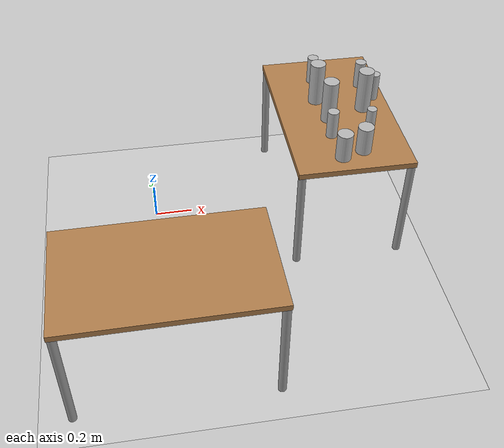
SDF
<sdf version="1.4">
 <world name="default">
  <physics type="ode">
   <gravity>0 0 -9.81</gravity>
   <ode>
    <solver><type>quick</type><iters>20</iters><sor>1</sor></solver>
    <constraints>
     <cfm>0</cfm>
     <erp>0.2</erp>
     <contact_max_correcting_vel>100</contact_max_correcting_vel>
     <contact_surface_layer>0</contact_surface_layer>
    </constraints>
   </ode>
   <real_time_update_rate>1000</real_time_update_rate>
   <max_step_size>0.001</max_step_size>
   <real_time_factor>1</real_time_factor>
  </physics>
  <light name="sun" type="directional">
   <pose>0 0 10 0 -0 0</pose>
   <diffuse>0.8 0.8 0.8 1</diffuse>
   <specular>0.2 0.2 0.2 1</specular>
   <attenuation>
    <range>1000</range>
    <constant>0.9</constant>
    <linear>0.01</linear>
    <quadratic>0.001</quadratic>
   </attenuation>
   <direction>-0.5 0.1 -0.9</direction>
  </light>
  <model name="ground_plane">
   <static>1</static>
   <link name="link">
    <collision name="collision">
     <geometry><plane><normal>0 0 1</normal><size>100 100</size></plane></geometry>
     <surface><friction><ode><mu>100</mu><mu2>50</mu2></ode></friction></surface>
    </collision>
    <visual name="visual">
     <cast_shadows>0</cast_shadows>
     <geometry><plane><normal>0 0 1</normal><size>100 100</size></plane></geometry>
     <material>
      <script><uri>file://media/materials/scripts/gazebo.material</uri><name>Gazebo/Grey</name></script>
     </material>
    </visual>
    <velocity_decay><linear>0</linear><angular>0</angular></velocity_decay>
   </link>
  </model>
  <scene><ambient>0.4 0.4 0.4 1</ambient><background>0.7 0.7 0.7 1</background><shadows>1</shadows></scene>
  <spherical_coordinates>
   <surface_model>EARTH_WGS84</surface_model>
   <latitude_deg>0</latitude_deg>
   <longitude_deg>0</longitude_deg>
   <elevation>0</elevation>
   <heading_deg>0</heading_deg>
  </spherical_coordinates>
  <model name="table">
   <static>1</static>
   <link name="link">
    <collision name="surface">
     <pose>0 0 0.6 0 -0 0</pose>
     <geometry><box><size>0.6 1 0.03</size></box></geometry>
    </collision>
    <visual name="visual1">
     <pose>0 0 0.6 0 -0 0</pose>
     <geometry><box><size>0.6 1 0.03</size></box></geometry>
     <material>
      <script><uri>file://media/materials/scripts/gazebo.material</uri><name>Gazebo/Wood</name></script>
     </material>
    </visual>
    <collision name="front_left_leg">
     <pose>0.28 0.48 0.3 0 -0 0</pose>
     <geometry><cylinder><radius>0.02</radius><length>0.6</length></cylinder></geometry>
    </collision>
    <visual name="front_left_leg">
     <pose>0.28 0.48 0.3 0 -0 0</pose>
     <geometry><cylinder><radius>0.02</radius><length>0.6</length></cylinder></geometry>
     <material>
      <script><uri>file://media/materials/scripts/gazebo.material</uri><name>Gazebo/Grey</name></script>
     </material>
    </visual>
    <collision name="front_right_leg">
     <pose>0.28 -0.48 0.3 0 -0 0</pose>
     <geometry><cylinder><radius>0.02</radius><length>0.6</length></cylinder></geometry>
    </collision>
    <visual name="front_right_leg">
     <pose>0.28 -0.48 0.3 0 -0 0</pose>
     <geometry><cylinder><radius>0.02</radius><length>0.6</length></cylinder></geometry>
     <material>
      <script><uri>file://media/materials/scripts/gazebo.material</uri><name>Gazebo/Grey</name></script>
     </material>
    </visual>
    <collision name="back_right_leg">
     <pose>-0.28 -0.48 0.3 0 -0 0</pose>
     <geometry><cylinder><radius>0.02</radius><length>0.6</length></cylinder></geometry>
    </collision>
    <visual name="back_right_leg">
     <pose>-0.28 -0.48 0.3 0 -0 0</pose>
     <geometry><cylinder><radius>0.02</radius><length>0.6</length></cylinder></geometry>
     <material>
      <script><uri>file://media/materials/scripts/gazebo.material</uri><name>Gazebo/Grey</name></script>
     </material>
    </visual>
    <collision name="back_left_leg">
     <pose>-0.28 0.48 0.3 0 -0 0</pose>
     <geometry><cylinder><radius>0.02</radius><length>0.6</length></cylinder></geometry>
    </collision>
    <visual name="back_left_leg">
     <pose>-0.28 0.48 0.3 0 -0 0</pose>
     <geometry><cylinder><radius>0.02</radius><length>0.6</length></cylinder></geometry>
     <material>
      <script><uri>file://media/materials/scripts/gazebo.material</uri><name>Gazebo/Grey</name></script>
     </material>
    </visual>
    <velocity_decay><linear>0</linear><angular>0</angular></velocity_decay>
   </link>
   <pose>1 0 0 0 -0 0</pose>
  </model>
  <model name="table_0">
   <static>1</static>
   <link name="link">
    <collision name="surface">
     <pose>0 0 0.6 0 -0 0</pose>
     <geometry><box><size>0.6 1 0.03</size></box></geometry>
    </collision>
    <visual name="visual1">
     <pose>0 0 0.6 0 -0 0</pose>
     <geometry><box><size>0.6 1 0.03</size></box></geometry>
     <material>
      <script><uri>file://media/materials/scripts/gazebo.material</uri><name>Gazebo/Wood</name></script>
     </material>
    </visual>
    <collision name="front_left_leg">
     <pose>0.28 0.48 0.3 0 -0 0</pose>
     <geometry><cylinder><radius>0.02</radius><length>0.6</length></cylinder></geometry>
    </collision>
    <visual name="front_left_leg">
     <pose>0.28 0.48 0.3 0 -0 0</pose>
     <geometry><cylinder><radius>0.02</radius><length>0.6</length></cylinder></geometry>
     <material>
      <script><uri>file://media/materials/scripts/gazebo.material</uri><name>Gazebo/Grey</name></script>
     </material>
    </visual>
    <collision name="front_right_leg">
     <pose>0.28 -0.48 0.3 0 -0 0</pose>
     <geometry><cylinder><radius>0.02</radius><length>0.6</length></cylinder></geometry>
    </collision>
    <visual name="front_right_leg">
     <pose>0.28 -0.48 0.3 0 -0 0</pose>
     <geometry><cylinder><radius>0.02</radius><length>0.6</length></cylinder></geometry>
     <material>
      <script><uri>file://media/materials/scripts/gazebo.material</uri><name>Gazebo/Grey</name></script>
     </material>
    </visual>
    <collision name="back_right_leg">
     <pose>-0.28 -0.48 0.3 0 -0 0</pose>
     <geometry><cylinder><radius>0.02</radius><length>0.6</length></cylinder></geometry>
    </collision>
    <visual name="back_right_leg">
     <pose>-0.28 -0.48 0.3 0 -0 0</pose>
     <geometry><cylinder><radius>0.02</radius><length>0.6</length></cylinder></geometry>
     <material>
      <script><uri>file://media/materials/scripts/gazebo.material</uri><name>Gazebo/Grey</name></script>
     </material>
    </visual>
    <collision name="back_left_leg">
     <pose>-0.28 0.48 0.3 0 -0 0</pose>
     <geometry><cylinder><radius>0.02</radius><length>0.6</length></cylinder></geometry>
    </collision>
    <visual name="back_left_leg">
     <pose>-0.28 0.48 0.3 0 -0 0</pose>
     <geometry><cylinder><radius>0.02</radius><length>0.6</length></cylinder></geometry>
     <material>
      <script><uri>file://media/materials/scripts/gazebo.material</uri><name>Gazebo/Grey</name></script>
     </material>
    </visual>
    <velocity_decay><linear>0</linear><angular>0</angular></velocity_decay>
   </link>
   <pose>0 -1 0 0 -0 1.57683</pose>
  </model>
  <model name="bifrutas_tropical_can">
   <static>0</static>
   <link name="link">
    <inertial>
     <mass>0.25</mass>
     <inertia><ixx>0</ixx><ixy>0</ixy><ixz>0</ixz><iyy>0</iyy><iyz>0</iyz><izz>0</izz></inertia>
    </inertial>
    <collision name="collision">
     <geometry><cylinder><radius>0.025</radius><length>0.132</length></cylinder></geometry>
    </collision>
    <visual name="visual">
     <geometry><cylinder><radius>0.025</radius><length>0.132</length></cylinder></geometry>
     <material>
      <script>
       <uri>model://bifrutas_tropical_can/material/scripts</uri>
       <uri>model://bifrutas_tropical_can/material/textures</uri>
       <name>Custom/bifrutas_tropical_can</name>
      </script>
     </material>
    </visual>
    <velocity_decay><linear>0</linear><angular>0</angular></velocity_decay>
   </link>
   <pose>1.13898 -0.1969 0.680999 -0.000343 3.8e-05 -5.5e-05</pose>
  </model>
  <model name="biscuits_pack">
   <static>0</static>
   <link name="link">
    <inertial>
     <mass>0.25</mass>
     <inertia><ixx>0</ixx><ixy>0</ixy><ixz>0</ixz><iyy>0</iyy><iyz>0</iyz><izz>0</izz></inertia>
    </inertial>
    <collision name="collision">
     <geometry><cylinder><radius>0.029</radius><length>0.15</length></cylinder></geometry>
    </collision>
    <visual name="visual">
     <geometry><cylinder><radius>0.029</radius><length>0.15</length></cylinder></geometry>
     <material>
      <script>
       <uri>model://biscuits_pack/material/scripts</uri>
       <uri>model://biscuits_pack/material/textures</uri>
       <name>Custom/biscuits_pack</name>
      </script>
     </material>
    </visual>
    <velocity_decay><linear>0</linear><angular>0</angular></velocity_decay>
   </link>
   <pose>0.93153 -0.213406 0.689999 -3.8e-05 -0.000299 -0.000126</pose>
  </model>
  <model name="pringles">
   <static>0</static>
   <link name="link">
    <inertial>
     <mass>0.25</mass>
     <inertia><ixx>0</ixx><ixy>0</ixy><ixz>0</ixz><iyy>0</iyy><iyz>0</iyz><izz>0</izz></inertia>
    </inertial>
    <collision name="collision">
     <geometry><cylinder><radius>0.04</radius><length>0.235</length></cylinder></geometry>
    </collision>
    <visual name="visual">
     <geometry><cylinder><radius>0.04</radius><length>0.235</length></cylinder></geometry>
     <material>
      <script>
       <uri>model://pringles/material/scripts</uri>
       <uri>model://pringles/material/textures</uri>
       <name>Custom/pringles</name>
      </script>
     </material>
    </visual>
    <velocity_decay><linear>0</linear><angular>0</angular></velocity_decay>
   </link>
   <pose>1.15313 -0.00643 0.732499 -0.000207 1.8e-05 -0.00016</pose>
  </model>
  <model name="pringles2">
   <static>0</static>
   <link name="link">
    <inertial>
     <mass>0.25</mass>
     <inertia><ixx>0</ixx><ixy>0</ixy><ixz>0</ixz><iyy>0</iyy><iyz>0</iyz><izz>0</izz></inertia>
    </inertial>
    <collision name="collision">
     <pose>0 0 0.12 -3.14159 -0 0</pose>
     <geometry><cylinder><radius>0.04</radius><length>0.235</length></cylinder></geometry>
    </collision>
    <visual name="visual">
     <pose>0 0 0.12 -3.14159 -0 0</pose>
     <geometry><cylinder><radius>0.04</radius><length>0.235</length></cylinder></geometry>
     <material>
      <script>
       <uri>model://pringles2/material/scripts</uri>
       <uri>model://pringles2/material/textures</uri>
       <name>Custom/pringles2</name>
      </script>
     </material>
    </visual>
    <velocity_decay><linear>0</linear><angular>0</angular></velocity_decay>
   </link>
   <pose>0.948996 -0.072318 0.612513 -0.000571 -4.8e-05 0.000129</pose>
  </model>
  <model name="sprite">
   <static>0</static>
   <link name="link">
    <inertial>
     <mass>0.25</mass>
     <inertia><ixx>0</ixx><ixy>0</ixy><ixz>0</ixz><iyy>0</iyy><iyz>0</iyz><izz>0</izz></inertia>
    </inertial>
    <collision name="collision">
     <pose>0 0 0.075 -3.14159 -0 0</pose>
     <geometry><cylinder><radius>0.04</radius><length>0.15</length></cylinder></geometry>
    </collision>
    <visual name="visual">
     <pose>0 0 0.075 -3.14159 -0 0</pose>
     <geometry><cylinder><radius>0.04</radius><length>0.15</length></cylinder></geometry>
     <material>
      <script>
       <uri>model://sprite/material/scripts</uri>
       <uri>model://sprite/material/textures</uri>
       <name>Custom/sprite</name>
      </script>
     </material>
    </visual>
    <velocity_decay><linear>0</linear><angular>0</angular></velocity_decay>
   </link>
   <pose>1.05919 -0.362877 0.615006 -0.000321 -0.000249 -0.000561</pose>
  </model>
  <model name="coke_can_slim_0">
   <static>0</static>
   <link name="link">
    <inertial>
     <mass>0.25</mass>
     <inertia>
      <ixx>7.1507e-05</ixx>
      <ixy>0</ixy>
      <ixz>0</ixz>
      <iyy>7.1507e-05</iyy>
      <iyz>0</iyz>
      <izz>1.4412e-05</izz>
     </inertia>
    </inertial>
    <collision name="collision">
     <geometry><cylinder><radius>0.029</radius><length>0.15</length></cylinder></geometry>
    </collision>
    <visual name="visual">
     <geometry><cylinder><radius>0.029</radius><length>0.15</length></cylinder></geometry>
     <material>
      <script>
       <uri>model://coke_can_slim/material/scripts</uri>
       <uri>model://coke_can_slim/material/textures</uri>
       <name>Custom/coke_can_slim</name>
      </script>
     </material>
    </visual>
    <velocity_decay><linear>0</linear><angular>0</angular></velocity_decay>
   </link>
   <pose>0.943547 0.298791 0.689991 3e-06 8e-06 0.001409</pose>
  </model>
  <model name="coke_can_slim_1">
   <static>0</static>
   <link name="link">
    <inertial>
     <mass>0.25</mass>
     <inertia>
      <ixx>7.1507e-05</ixx>
      <ixy>0</ixy>
      <ixz>0</ixz>
      <iyy>7.1507e-05</iyy>
      <iyz>0</iyz>
      <izz>1.4412e-05</izz>
     </inertia>
    </inertial>
    <collision name="collision">
     <geometry><cylinder><radius>0.029</radius><length>0.15</length></cylinder></geometry>
    </collision>
    <visual name="visual">
     <geometry><cylinder><radius>0.029</radius><length>0.15</length></cylinder></geometry>
     <material>
      <script>
       <uri>model://coke_can_slim/material/scripts</uri>
       <uri>model://coke_can_slim/material/textures</uri>
       <name>Custom/coke_can_slim</name>
      </script>
     </material>
    </visual>
    <velocity_decay><linear>0</linear><angular>0</angular></velocity_decay>
   </link>
   <pose>1.23292 0.086558 0.690001 1e-05 3.3e-05 -0.000283</pose>
  </model>
  <model name="pringles_0">
   <static>0</static>
   <link name="link">
    <inertial>
     <mass>0.25</mass>
     <inertia><ixx>0</ixx><ixy>0</ixy><ixz>0</ixz><iyy>0</iyy><iyz>0</iyz><izz>0</izz></inertia>
    </inertial>
    <collision name="collision">
     <geometry><cylinder><radius>0.04</radius><length>0.235</length></cylinder></geometry>
    </collision>
    <visual name="visual">
     <geometry><cylinder><radius>0.04</radius><length>0.235</length></cylinder></geometry>
     <material>
      <script>
       <uri>model://pringles/material/scripts</uri>
       <uri>model://pringles/material/textures</uri>
       <name>Custom/pringles</name>
      </script>
     </material>
    </visual>
    <velocity_decay><linear>0</linear><angular>0</angular></velocity_decay>
   </link>
   <pose>0.920724 0.102732 0.732538 -0.000657 0.000982 4e-06</pose>
  </model>
  <model name="sprite_0">
   <static>0</static>
   <link name="link">
    <inertial>
     <mass>0.25</mass>
     <inertia><ixx>0</ixx><ixy>0</ixy><ixz>0</ixz><iyy>0</iyy><iyz>0</iyz><izz>0</izz></inertia>
    </inertial>
    <collision name="collision">
     <pose>0 0 0.075 -3.14159 -0 0</pose>
     <geometry><cylinder><radius>0.04</radius><length>0.15</length></cylinder></geometry>
    </collision>
    <visual name="visual">
     <pose>0 0 0.075 -3.14159 -0 0</pose>
     <geometry><cylinder><radius>0.04</radius><length>0.15</length></cylinder></geometry>
     <material>
      <script>
       <uri>model://sprite/material/scripts</uri>
       <uri>model://sprite/material/textures</uri>
       <name>Custom/sprite</name>
      </script>
     </material>
    </visual>
    <velocity_decay><linear>0</linear><angular>0</angular></velocity_decay>
   </link>
   <pose>0.944498 -0.400686 0.615003 -0.000266 0.00016 -6.61744e-24</pose>
  </model>
  <model name="biscuits_pack_0">
   <static>0</static>
   <link name="link">
    <inertial>
     <mass>0.25</mass>
     <inertia><ixx>0</ixx><ixy>0</ixy><ixz>0</ixz><iyy>0</iyy><iyz>0</iyz><izz>0</izz></inertia>
    </inertial>
    <collision name="collision">
     <geometry><cylinder><radius>0.029</radius><length>0.15</length></cylinder></geometry>
    </collision>
    <visual name="visual">
     <geometry><cylinder><radius>0.029</radius><length>0.15</length></cylinder></geometry>
     <material>
      <script>
       <uri>model://biscuits_pack/material/scripts</uri>
       <uri>model://biscuits_pack/material/textures</uri>
       <name>Custom/biscuits_pack</name>
      </script>
     </material>
    </visual>
    <velocity_decay><linear>0</linear><angular>0</angular></velocity_decay>
   </link>
   <pose>1.19259 0.214328 0.690011 -0.00064 -0.00021 1e-06</pose>
  </model>
 </world>
</sdf>
